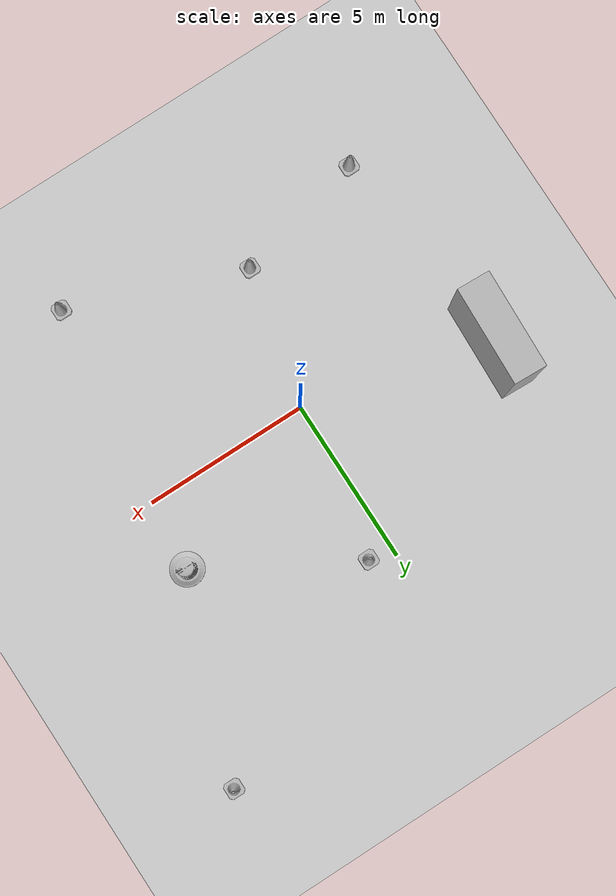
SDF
<sdf version="1.6">
 <world name="default">
  <light name="sun" type="directional">
   <pose>0 0 10 0 -0 0</pose>
   <diffuse>0.8 0.8 0.8 1</diffuse>
   <specular>0.2 0.2 0.2 1</specular>
   <attenuation>
    <range>1000</range>
    <constant>0.9</constant>
    <linear>0.01</linear>
    <quadratic>0.001</quadratic>
   </attenuation>
   <direction>-0.5 0.1 -0.9</direction>
   <spot><inner_angle>0</inner_angle><outer_angle>0</outer_angle><falloff>0</falloff></spot>
  </light>
  <model name="ground_plane">
   <static>1</static>
   <link name="link">
    <collision name="collision">
     <geometry><plane><normal>0 0 1</normal><size>100 100</size></plane></geometry>
     <surface>
      <contact><collide_bitmask>65535</collide_bitmask></contact>
      <friction><ode><mu>100</mu><mu2>50</mu2></ode></friction>
     </surface>
    </collision>
    <visual name="visual">
     <cast_shadows>0</cast_shadows>
     <geometry><plane><normal>0 0 1</normal><size>100 100</size></plane></geometry>
     <material>
      <script><uri>file://media/materials/scripts/gazebo.material</uri><name>Gazebo/Grey</name></script>
     </material>
    </visual>
   </link>
  </model>
  <gravity>0 0 -9.8</gravity>
  <magnetic_field>6e-06 2.3e-05 -4.2e-05</magnetic_field>
  <atmosphere type="adiabatic"/>
  <physics type="ode">
   <max_step_size>0.001</max_step_size>
   <real_time_factor>1</real_time_factor>
   <real_time_update_rate>1000</real_time_update_rate>
  </physics>
  <scene><ambient>0.4 0.4 0.4 1</ambient><background>0.7 0.7 0.7 1</background><shadows>1</shadows></scene>
  <audio><device>default</device></audio>
  <spherical_coordinates>
   <surface_model>EARTH_WGS84</surface_model>
   <latitude_deg>0</latitude_deg>
   <longitude_deg>0</longitude_deg>
   <elevation>0</elevation>
   <heading_deg>0</heading_deg>
  </spherical_coordinates>
  <model name="Construction Barrel">
   <link name="link">
    <inertial>
     <pose>0 0 0.4 0 -0 0</pose>
     <mass>500</mass>
     <inertia><ixx>51.2096</ixx><iyy>51.2096</iyy><izz>25</izz><ixy>0</ixy><ixz>0</ixz><iyz>0</iyz></inertia>
    </inertial>
    <collision name="collision">
     <geometry><mesh><uri>model://construction_barrel/meshes/construction_barrel.dae</uri></mesh></geometry>
    </collision>
    <visual name="visual">
     <geometry><mesh><uri>model://construction_barrel/meshes/construction_barrel.dae</uri></mesh></geometry>
    </visual>
   </link>
   <pose>5.16769 2.11066 -1e-06 3e-06 7e-06 -2.2e-05</pose>
  </model>
  <model name="Construction Cone">
   <link name="link">
    <collision name="collision">
     <geometry>
      <mesh><scale>10 10 10</scale><uri>model://construction_cone/meshes/construction_cone.dae</uri></mesh>
     </geometry>
    </collision>
    <visual name="visual">
     <geometry>
      <mesh><scale>10 10 10</scale><uri>model://construction_cone/meshes/construction_cone.dae</uri></mesh>
     </geometry>
    </visual>
    <inertial>
     <inertia><ixx>1</ixx><ixy>0</ixy><ixz>0</ixz><iyy>1</iyy><iyz>0</iyz><izz>1</izz></inertia>
     <mass>1</mass>
    </inertial>
   </link>
   <pose>0.729703 4.67177 -0 0 -1e-06 0</pose>
  </model>
  <model name="Construction Cone_0">
   <link name="link">
    <collision name="collision">
     <geometry>
      <mesh><scale>10 10 10</scale><uri>model://construction_cone/meshes/construction_cone.dae</uri></mesh>
     </geometry>
    </collision>
    <visual name="visual">
     <geometry>
      <mesh><scale>10 10 10</scale><uri>model://construction_cone/meshes/construction_cone.dae</uri></mesh>
     </geometry>
    </visual>
    <inertial>
     <inertia><ixx>1</ixx><ixy>0</ixy><ixz>0</ixz><iyy>1</iyy><iyz>0</iyz><izz>1</izz></inertia>
     <mass>1</mass>
    </inertial>
   </link>
   <pose>7.37585 7.9754 -0 0 -0 0</pose>
  </model>
  <model name="brick_box_3x1x3">
   <static>1</static>
   <link name="chassis">
    <pose>0 0 1.5 0 -0 0</pose>
    <collision name="collision"><geometry><box><size>3 1 3</size></box></geometry></collision>
    <visual name="visual">
     <geometry><mesh><uri>model://brick_box_3x1x3/meshes/simple_box.dae</uri><scale>3 1 3</scale></mesh></geometry>
     <material>
      <script>
       <uri>model://brick_box_3x1x3/materials/scripts</uri>
       <uri>model://brick_box_3x1x3/materials/textures</uri>
       <name>BrickBox/Diffuse</name>
      </script>
     </material>
    </visual>
   </link>
   <pose>-5.51959 1.42792 0 0 0 -1.61252</pose>
  </model>
  <model name="Construction Cone_1">
   <link name="link">
    <collision name="collision">
     <geometry>
      <mesh><scale>10 10 10</scale><uri>model://construction_cone/meshes/construction_cone.dae</uri></mesh>
     </geometry>
    </collision>
    <visual name="visual">
     <geometry>
      <mesh><scale>10 10 10</scale><uri>model://construction_cone/meshes/construction_cone.dae</uri></mesh>
     </geometry>
    </visual>
    <inertial>
     <inertia><ixx>1</ixx><ixy>0</ixy><ixz>0</ixz><iyy>1</iyy><iyz>0</iyz><izz>1</izz></inertia>
     <mass>1</mass>
    </inertial>
   </link>
   <pose>4.18542 -6.06497 -0 0 -1e-06 0</pose>
  </model>
  <model name="Construction Cone_2">
   <link name="link">
    <collision name="collision">
     <geometry>
      <mesh><scale>10 10 10</scale><uri>model://construction_cone/meshes/construction_cone.dae</uri></mesh>
     </geometry>
    </collision>
    <visual name="visual">
     <geometry>
      <mesh><scale>10 10 10</scale><uri>model://construction_cone/meshes/construction_cone.dae</uri></mesh>
     </geometry>
    </visual>
    <inertial>
     <inertia><ixx>1</ixx><ixy>0</ixy><ixz>0</ixz><iyy>1</iyy><iyz>0</iyz><izz>1</izz></inertia>
     <mass>1</mass>
    </inertial>
   </link>
   <pose>-0.994955 -4.15836 -0 0 -0 0</pose>
  </model>
  <model name="Construction Cone_3">
   <link name="link">
    <collision name="collision">
     <geometry>
      <mesh><scale>10 10 10</scale><uri>model://construction_cone/meshes/construction_cone.dae</uri></mesh>
     </geometry>
    </collision>
    <visual name="visual">
     <geometry>
      <mesh><scale>10 10 10</scale><uri>model://construction_cone/meshes/construction_cone.dae</uri></mesh>
     </geometry>
    </visual>
    <inertial>
     <inertia><ixx>1</ixx><ixy>0</ixy><ixz>0</ixz><iyy>1</iyy><iyz>0</iyz><izz>1</izz></inertia>
     <mass>1</mass>
    </inertial>
   </link>
   <pose>-4.99627 -5.10525 0 -0 -0 -0</pose>
  </model>
 </world>
</sdf>
